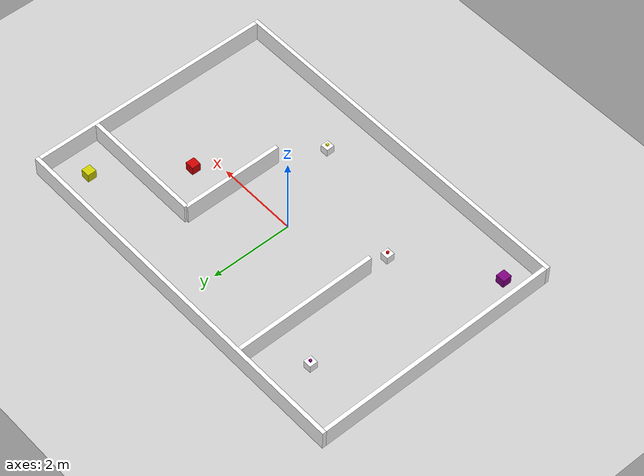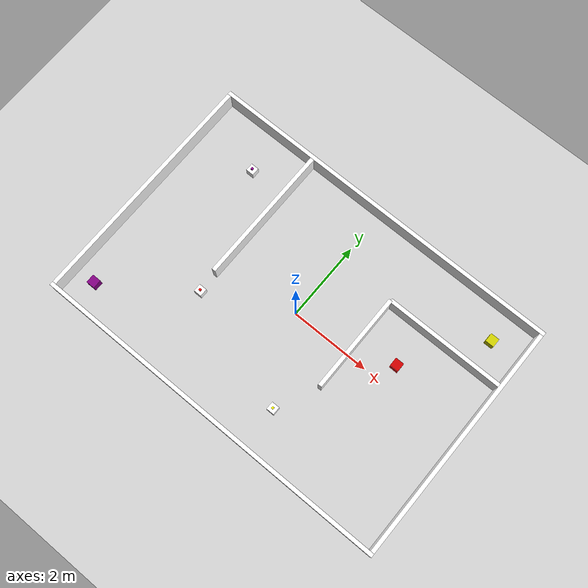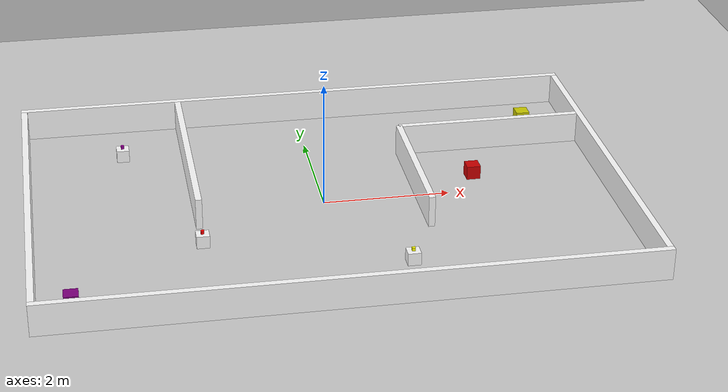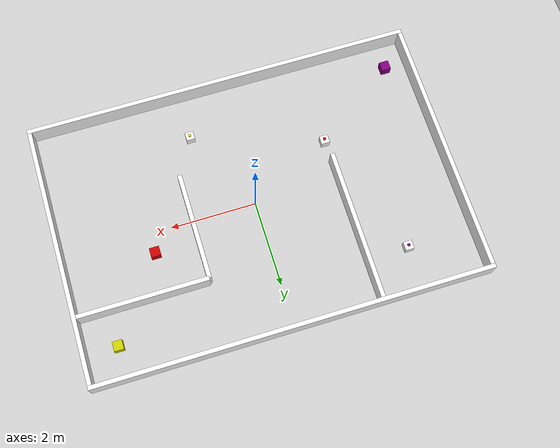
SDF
<?xml version="1.0" ?>
<sdf version="1.9">
  <world name="testing_world">

    <plugin filename="gz-sim-physics-system" name="gz::sim::systems::Physics"/>
    <plugin filename="gz-sim-user-commands-system" name="gz::sim::systems::UserCommands"/>
    <plugin filename="gz-sim-scene-broadcaster-system" name="gz::sim::systems::SceneBroadcaster"/>
    <plugin filename="gz-sim-imu-system" name="gz::sim::systems::Imu"/>

    <plugin filename="gz-sim-sensors-system" name="gz::sim::systems::Sensors">
      <render_engine>ogre2</render_engine>
    </plugin>

    <physics type="ode">
      <max_step_size>0.005</max_step_size>
      <real_time_update_rate>200</real_time_update_rate>
    </physics>

    <light type="directional" name="sun">
      <cast_shadows>false</cast_shadows>
      <pose>0 0 10 0 0 0</pose>
      <diffuse>0.8 0.8 0.8 1</diffuse>
      <specular>0.2 0.2 0.2 1</specular>
      <direction>-0.5 0.1 -0.9</direction>
    </light>

    <model name="ground_plane">
      <static>true</static>
      <link name="link">
        <collision name="collision">
          <geometry><plane><normal>0 0 1</normal><size>12 10</size></plane></geometry>
        </collision>
        <visual name="visual">
          <geometry><plane><normal>0 0 1</normal><size>12 10</size></plane></geometry>
          <material>
            <ambient>0.8 0.8 0.8 1</ambient>
            <diffuse>0.8 0.8 0.8 1</diffuse>
          </material>
        </visual>
      </link>
    </model>

    <model name="wall_north">
      <static>true</static>
      <pose>0 3.05 0.25 0 0 0</pose>
      <link name="link">
        <collision name="collision"><geometry><box><size>9.2 0.1 0.5</size></box></geometry></collision>
        <visual name="visual">
          <geometry><box><size>9.2 0.1 0.5</size></box></geometry>
          <material>
            <ambient>1 1 1 1</ambient>
            <diffuse>1 1 1 1</diffuse>
          </material>
        </visual>
      </link>
    </model>

    <model name="wall_south">
      <static>true</static>
      <pose>0 -3.05 0.25 0 0 0</pose>
      <link name="link">
        <collision name="collision"><geometry><box><size>9.2 0.1 0.5</size></box></geometry></collision>
        <visual name="visual">
          <geometry><box><size>9.2 0.1 0.5</size></box></geometry>
          <material>
            <ambient>1 1 1 1</ambient>
            <diffuse>1 1 1 1</diffuse>
          </material>
        </visual>
      </link>
    </model>

    <model name="wall_east">
      <static>true</static>
      <pose>4.55 0 0.25 0 0 0</pose>
      <link name="link">
        <collision name="collision"><geometry><box><size>0.1 6.0 0.5</size></box></geometry></collision>
        <visual name="visual">
          <geometry><box><size>0.1 6.0 0.5</size></box></geometry>
          <material>
            <ambient>1 1 1 1</ambient>
            <diffuse>1 1 1 1</diffuse>
          </material>
        </visual>
      </link>
    </model>

    <model name="wall_west">
      <static>true</static>
      <pose>-4.55 0 0.25 0 0 0</pose>
      <link name="link">
        <collision name="collision"><geometry><box><size>0.1 6.0 0.5</size></box></geometry></collision>
        <visual name="visual">
          <geometry><box><size>0.1 6.0 0.5</size></box></geometry>
          <material>
            <ambient>1 1 1 1</ambient>
            <diffuse>1 1 1 1</diffuse>
          </material>
        </visual>
      </link>
    </model>

    <model name="inner_wall_1">
      <static>true</static>
      <pose>-2.0 1.25 0.25 0 0 0</pose>
      <link name="link">
        <collision name="collision"><geometry><box><size>0.1 3.5 0.5</size></box></geometry></collision>
        <visual name="visual">
          <geometry><box><size>0.1 3.5 0.5</size></box></geometry>
          <material>
            <ambient>1 1 1 1</ambient>
            <diffuse>1 1 1 1</diffuse>
          </material>
        </visual>
      </link>
    </model>

    <model name="inner_wall_2_hz">
      <static>true</static>
      <pose>3.0 1.5 0.25 0 0 0</pose>
      <link name="link">
        <collision name="collision"><geometry><box><size>3.0 0.1 0.5</size></box></geometry></collision>
        <visual name="visual">
          <geometry><box><size>3.0 0.1 0.5</size></box></geometry>
          <material>
            <ambient>1 1 1 1</ambient>
            <diffuse>1 1 1 1</diffuse>
          </material>
        </visual>
      </link>
    </model>

    <model name="inner_wall_2_vt">
      <static>true</static>
      <pose>1.5 0.25 0.25 0 0 0</pose>
      <link name="link">
        <collision name="collision"><geometry><box><size>0.1 2.5 0.5</size></box></geometry></collision>
        <visual name="visual">
          <geometry><box><size>0.1 2.5 0.5</size></box></geometry>
          <material>
            <ambient>1 1 1 1</ambient>
            <diffuse>1 1 1 1</diffuse>
          </material>
        </visual>
      </link>
    </model>
    <model name="red_box">
      <static>true</static>
      <pose>2.5 0.5 0.11 0 0 0</pose>
      <link name="link">
        <collision name="collision"><geometry><box><size>0.22 0.22 0.22</size></box></geometry></collision>
        <visual name="visual">
          <geometry><box><size>0.22 0.22 0.22</size></box></geometry>
          <material>
            <ambient>0.8 0 0 0.9</ambient>
            <diffuse>0.8 0 0 0.9</diffuse>
            <specular>0.6 0.6 0.6 1</specular>
          </material>
        </visual>
      </link>
    </model>

    <model name="yellow_box">
      <static>true</static>
      <pose>3.8 2.3 0.11 0 0 0</pose>
      <link name="link">
        <collision name="collision"><geometry><box><size>0.22 0.22 0.22</size></box></geometry></collision>
        <visual name="visual">
          <geometry><box><size>0.22 0.22 0.22</size></box></geometry>
          <material>
            <ambient>0.8 0.8 0 0.9</ambient>
            <diffuse>0.8 0.8 0 0.9</diffuse>
            <specular>0.6 0.6 0.6 1</specular>
          </material>
        </visual>
      </link>
    </model>

    <model name="purple_box">
      <static>true</static>
      <pose>-4.0 -2.4 0.11 0 0 0</pose>
      <link name="link">
        <collision name="collision"><geometry><box><size>0.22 0.22 0.22</size></box></geometry></collision>
        <visual name="visual">
          <geometry><box><size>0.22 0.22 0.22</size></box></geometry>
          <material>
            <ambient>0.5 0 0.5 0.9</ambient>
            <diffuse>0.5 0 0.5 0.9</diffuse>
            <specular>0.6 0.6 0.6 1</specular>
          </material>
        </visual>
      </link>
    </model>

    <model name="white_box_1">
      <static>true</static>
      <pose>-2.0 -1.0 0.1 0 0 0</pose>
      <link name="link">
        <collision name="collision"><geometry><box><size>0.2 0.2 0.2</size></box></geometry></collision>
        <visual name="visual">
          <geometry><box><size>0.2 0.2 0.2</size></box></geometry>
          <material><ambient>1 1 1 1</ambient><diffuse>1 1 1 1</diffuse></material>
        </visual>
      </link>
    </model>

    <model name="red_object">
      <static>true</static>
      <pose>-2.0 -1.0 0.225 0 0 0</pose>
      <link name="link">
        <collision name="collision"><geometry><box><size>0.05 0.05 0.05</size></box></geometry></collision>
        <visual name="visual">
          <geometry><box><size>0.05 0.05 0.05</size></box></geometry>
          <material>
            <ambient>1 0 0 1</ambient>
            <diffuse>1 0 0 1</diffuse>
            <specular>0 0 0 0</specular>
          </material>
        </visual>
      </link>
    </model>

    <model name="white_box_2">
      <static>true</static>
      <pose>1.0 -2.0 0.1 0 0 0</pose>
      <link name="link">
        <collision name="collision"><geometry><box><size>0.2 0.2 0.2</size></box></geometry></collision>
        <visual name="visual">
          <geometry><box><size>0.2 0.2 0.2</size></box></geometry>
          <material><ambient>1 1 1 1</ambient><diffuse>1 1 1 1</diffuse></material>
        </visual>
      </link>
    </model>

    <model name="yellow_object">
      <static>true</static>
      <pose>1.0 -2.0 0.225 0 0 0</pose>
      <link name="link">
        <collision name="collision"><geometry><box><size>0.05 0.05 0.05</size></box></geometry></collision>
        <visual name="visual">
          <geometry><box><size>0.05 0.05 0.05</size></box></geometry>
          <material>
            <ambient>1 1 0 1</ambient>
            <diffuse>1 1 0 1</diffuse>
            <specular>0 0 0 0</specular>
          </material>
        </visual>
      </link>
    </model>

    <model name="white_box_3">
      <static>true</static>
      <pose>-3.0 2.0 0.1 0 0 0</pose>
      <link name="link">
        <collision name="collision"><geometry><box><size>0.2 0.2 0.2</size></box></geometry></collision>
        <visual name="visual">
          <geometry><box><size>0.2 0.2 0.2</size></box></geometry>
          <material><ambient>1 1 1 1</ambient><diffuse>1 1 1 1</diffuse></material>
        </visual>
      </link>
    </model>

    <model name="purple_object">
      <static>true</static>
      <pose>-3.0 2.0 0.225 0 0 0</pose>
      <link name="link">
        <collision name="collision"><geometry><box><size>0.05 0.05 0.05</size></box></geometry></collision>
        <visual name="visual">
          <geometry><box><size>0.05 0.05 0.05</size></box></geometry>
          <material>
            <ambient>0.6 0 0.6 1</ambient>
            <diffuse>0.6 0 0.6 1</diffuse>
            <specular>0 0 0 0</specular>
          </material>
        </visual>
      </link>
    </model>

  </world>
</sdf>
